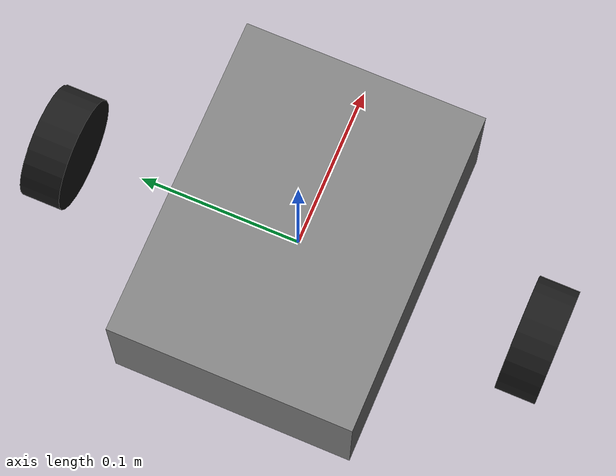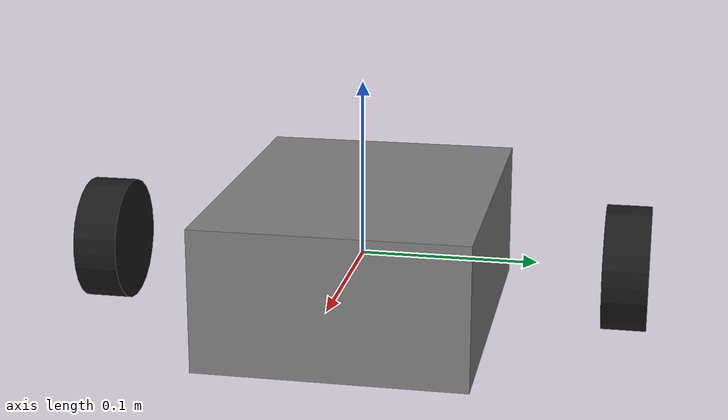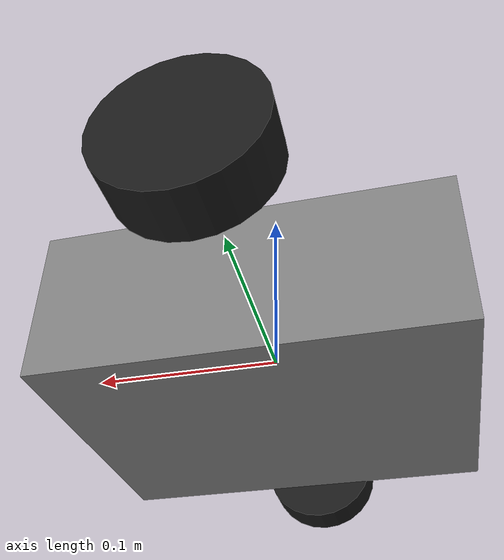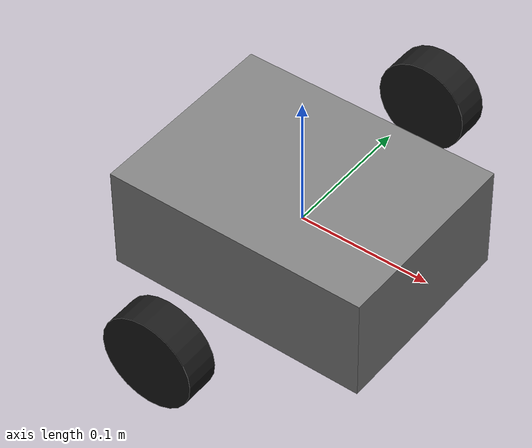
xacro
<?xml version="1.0"?>
<robot name="hermes" xmlns:xacro="http://ros.org/wiki/xacro">

  <!-- ── Base link ──────────────────────────────────────────────────── -->
  <link name="base_link">
    <visual>
      <geometry>
        <box size="0.20 0.15 0.08"/>
      </geometry>
      <material name="grey">
        <color rgba="0.5 0.5 0.5 1.0"/>
      </material>
    </visual>
    <collision>
      <geometry>
        <box size="0.20 0.15 0.08"/>
      </geometry>
    </collision>
    <inertial>
      <mass value="1.0"/>
      <inertia ixx="0.01" ixy="0.0" ixz="0.0"
               iyy="0.01" iyz="0.0"
               izz="0.01"/>
    </inertial>
  </link>

  <!-- ── Left wheel ─────────────────────────────────────────────────── -->
  <link name="left_wheel_link">
    <visual>
      <geometry>
        <cylinder length="0.025" radius="0.035"/>
      </geometry>
      <material name="black">
        <color rgba="0.1 0.1 0.1 1.0"/>
      </material>
    </visual>
    <collision>
      <geometry>
        <cylinder length="0.025" radius="0.035"/>
      </geometry>
    </collision>
    <inertial>
      <mass value="0.1"/>
      <inertia ixx="0.0001" ixy="0.0" ixz="0.0"
               iyy="0.0001" iyz="0.0"
               izz="0.0001"/>
    </inertial>
  </link>

  <!-- Left wheel rotates about the Y-axis of base_link; the joint rpy
       rotates the cylinder so its flat face aligns with the wheel plane. -->
  <joint name="left_wheel_joint" type="continuous">
    <parent link="base_link"/>
    <child link="left_wheel_link"/>
    <origin xyz="0.0 0.15 0.0" rpy="${-pi/2} 0.0 0.0"/>
    <axis xyz="0 0 1"/>
  </joint>

  <!-- ── Right wheel ────────────────────────────────────────────────── -->
  <link name="right_wheel_link">
    <visual>
      <geometry>
        <cylinder length="0.025" radius="0.035"/>
      </geometry>
      <material name="black"/>
    </visual>
    <collision>
      <geometry>
        <cylinder length="0.025" radius="0.035"/>
      </geometry>
    </collision>
    <inertial>
      <mass value="0.1"/>
      <inertia ixx="0.0001" ixy="0.0" ixz="0.0"
               iyy="0.0001" iyz="0.0"
               izz="0.0001"/>
    </inertial>
  </link>

  <joint name="right_wheel_joint" type="continuous">
    <parent link="base_link"/>
    <child link="right_wheel_link"/>
    <origin xyz="0.0 -0.15 0.0" rpy="${-pi/2} 0.0 0.0"/>
    <axis xyz="0 0 1"/>
  </joint>

  <!-- ── ros2_control hardware interface ────────────────────────────── -->
  <ros2_control name="HermesHardware" type="system">
    <hardware>
      <plugin>hermes_driver_base/HermesHardware</plugin>

      <!-- Motor limits -->
      <param name="max_rpm">200.0</param>
      <param name="pwm_frequency">1000</param>

      <param name="min_pwm_fraction">0.15</param>

      <param name="velocity_deadband">0.05</param>

      <!-- GPIO chip (Raspberry Pi default) -->
      <param name="gpio_chip">gpiochip0</param>

      <!-- Motor A (left) GPIO BCM pins -->
      <param name="gpio_pwma">12</param>
      <param name="gpio_ain1">23</param>
      <param name="gpio_ain2">24</param>

      <!-- Motor B (right) GPIO BCM pins -->
      <param name="gpio_pwmb">13</param>
      <param name="gpio_bin1">27</param>
      <param name="gpio_bin2">22</param>

      <!-- Standby pin -->
      <param name="gpio_stby">25</param>
    </hardware>

    <!-- Index 0 → left wheel (Motor A) -->
    <joint name="left_wheel_joint">
      <command_interface name="velocity"/>
      <state_interface name="position"/>
      <state_interface name="velocity"/>
    </joint>

    <!-- Index 1 → right wheel (Motor B) -->
    <joint name="right_wheel_joint">
      <command_interface name="velocity"/>
      <state_interface name="position"/>
      <state_interface name="velocity"/>
    </joint>
  </ros2_control>

</robot>
